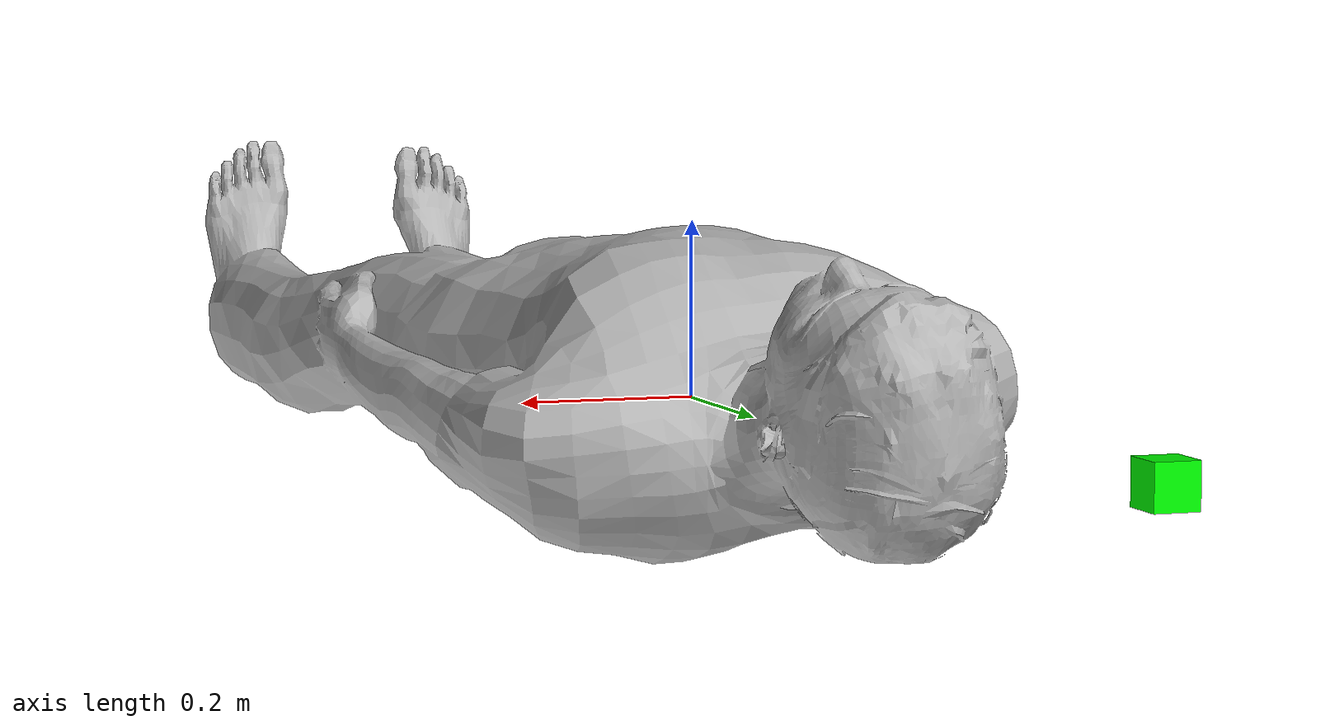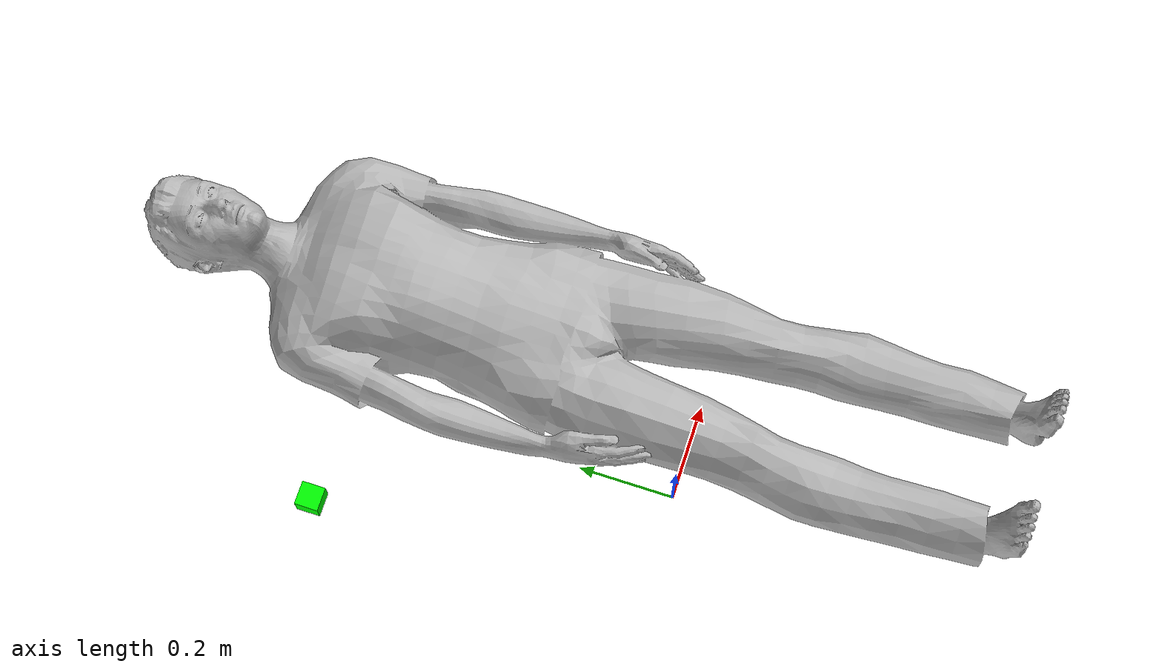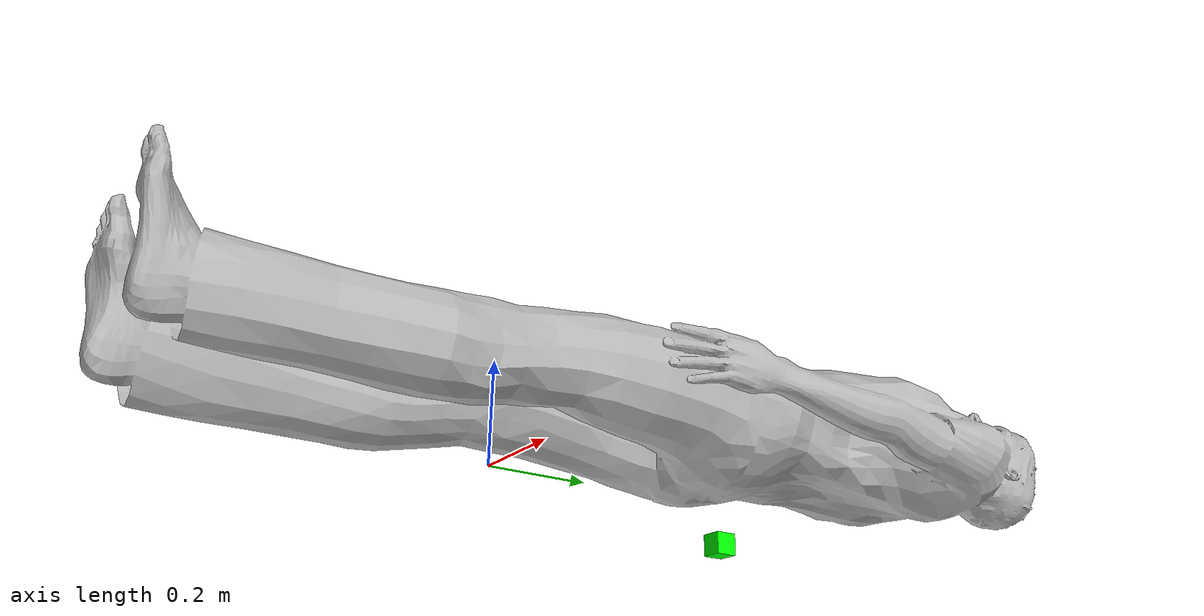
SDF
<?xml version='1.0'?>
<sdf version='1.7'>
  <model name='human_sponge'>
    <link name='link_0'>
      <inertial>
        <mass>1</mass>
        <inertia>
          <ixx>0.166667</ixx>
          <ixy>0</ixy>
          <ixz>0</ixz>
          <iyy>0.166667</iyy>
          <iyz>0</iyz>
          <izz>0.166667</izz>
        </inertia>
        <pose>0 0 0 0 -0 0</pose>
      </inertial>
      <pose>-0.23178 0.709357 -0.01261 0 -0 0</pose>
      <gravity>1</gravity>
      <self_collide>0</self_collide>
      <kinematic>0</kinematic>
      <enable_wind>0</enable_wind>
      <visual name='visual'>
        <pose>0 0 0 0 -0 0</pose>
        <geometry>
          <box>
            <size>0.05 0.05 0.05</size>
          </box>
        </geometry>
        <material>
          <lighting>1</lighting>
          <script>
            <uri>file://media/materials/scripts/gazebo.material</uri>
            <name>Gazebo/Grey</name>
          </script>
          <shader type='pixel'>
            <normal_map>__default__</normal_map>
          </shader>
          <ambient>0 1 0 1</ambient>
          <diffuse>0.7 0.7 0.7 1</diffuse>
          <specular>0.01 0.01 0.01 1</specular>
          <emissive>0 0 0 1</emissive>
        </material>
        <transparency>0</transparency>
        <cast_shadows>1</cast_shadows>
      </visual>
      <collision name='collision'>
        <laser_retro>0</laser_retro>
        <max_contacts>10</max_contacts>
        <pose>0 0 0 0 -0 0</pose>
        <geometry>
          <box>
            <size>0.05 0.05 0.05</size>
          </box>
        </geometry>
        <surface>
          <friction>
            <ode>
              <mu>1</mu>
              <mu2>1</mu2>
              <fdir1>0 0 0</fdir1>
              <slip1>0</slip1>
              <slip2>0</slip2>
            </ode>
            <torsional>
              <coefficient>1</coefficient>
              <patch_radius>0</patch_radius>
              <surface_radius>0</surface_radius>
              <use_patch_radius>1</use_patch_radius>
              <ode>
                <slip>0</slip>
              </ode>
            </torsional>
          </friction>
          <bounce>
            <restitution_coefficient>0</restitution_coefficient>
            <threshold>1e+06</threshold>
          </bounce>
          <contact>
            <collide_without_contact>0</collide_without_contact>
            <collide_without_contact_bitmask>1</collide_without_contact_bitmask>
            <collide_bitmask>1</collide_bitmask>
            <ode>
              <soft_cfm>0</soft_cfm>
              <soft_erp>0.2</soft_erp>
              <kp>1e+13</kp>
              <kd>1</kd>
              <max_vel>0.01</max_vel>
              <min_depth>0</min_depth>
            </ode>
            <bullet>
              <split_impulse>1</split_impulse>
              <split_impulse_penetration_threshold>-0.01</split_impulse_penetration_threshold>
              <soft_cfm>0</soft_cfm>
              <soft_erp>0.2</soft_erp>
              <kp>1e+13</kp>
              <kd>1</kd>
            </bullet>
          </contact>
        </surface>
      </collision>
    </link>
    <model name='person_standing'>
      <link name='link'>
        <inertial>
          <pose>0 -0.1 0.95 0 -0 0</pose>
          <mass>80</mass>
          <inertia>
            <ixx>24.88</ixx>
            <ixy>0</ixy>
            <ixz>0</ixz>
            <iyy>25.73</iyy>
            <iyz>0</iyz>
            <izz>2.48</izz>
          </inertia>
        </inertial>
        <collision name='bottom'>
          <pose>0 -0.1 0.01 0 -0 0</pose>
          <geometry>
            <box>
              <size>0.5 0.35 0.02</size>
            </box>
          </geometry>
        </collision>
        <collision name='person'>
          <pose>0 0 0.02 0.04 -0 0</pose>
          <geometry>
            <mesh>
              <uri>model://person_standing/meshes/standing.dae</uri>
            </mesh>
          </geometry>
        </collision>
        <visual name='visual'>
          <pose>0 0 0.02 0.04 -0 0</pose>
          <geometry>
            <mesh>
              <uri>model://person_standing/meshes/standing.dae</uri>
            </mesh>
          </geometry>
        </visual>
      </link>
      <pose>0.23178 -0.709358 0.012611 -1.57618 0.000154 0.003041</pose>
    </model>
    <static>0</static>
    <allow_auto_disable>1</allow_auto_disable>
  </model>
</sdf>
